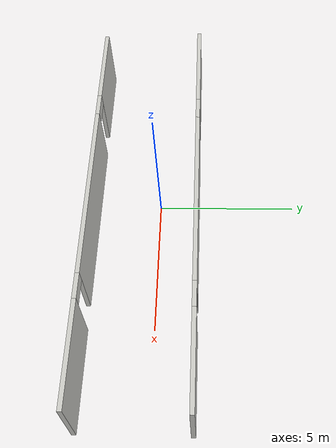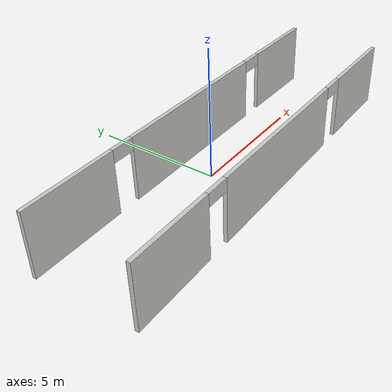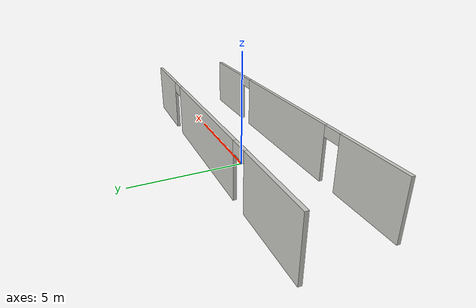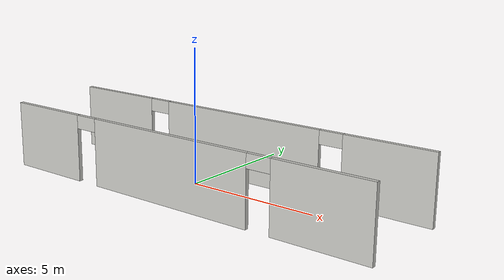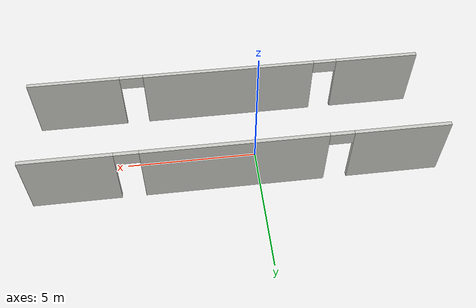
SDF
<sdf version="1.7">
 <world name="__default__">
  <gravity>0 0 -9.8</gravity>
  <magnetic_field>6e-06 2.3e-05 -4.2e-05</magnetic_field>
  <atmosphere type="adiabatic"/>
  <physics type="ode">
   <max_step_size>0.001</max_step_size>
   <real_time_factor>1</real_time_factor>
   <real_time_update_rate>1000</real_time_update_rate>
  </physics>
  <scene><ambient>0.4 0.4 0.4 1</ambient><background>0.7 0.7 0.7 1</background><shadows>1</shadows></scene>
  <spherical_coordinates>
   <surface_model>EARTH_WGS84</surface_model>
   <latitude_deg>0</latitude_deg>
   <longitude_deg>0</longitude_deg>
   <elevation>0</elevation>
   <heading_deg>0</heading_deg>
  </spherical_coordinates>
  <model name="hallway">
   <pose>0.813191 -0.491111 0 0 -0 0</pose>
   <link name="Wall_2">
    <pose>-0 1.87585 0 0 -0 0</pose>
    <visual name="Wall_2_Visual_0">
     <pose>-5.95887 0 1.25 0 -0 0</pose>
     <geometry><box><size>3.58227 0.15 2.5</size></box></geometry>
     <material>
      <script><uri>file://media/materials/scripts/gazebo.material</uri><name>Gazebo/CeilingTiled</name></script>
      <ambient>1 0.764706 0.305882 1</ambient>
     </material>
     <meta><layer>0</layer></meta>
    </visual>
    <collision name="Wall_2_Collision_0">
     <geometry><box><size>3.58227 0.15 2.5</size></box></geometry>
     <pose>-5.95887 0 1.25 0 -0 0</pose>
    </collision>
    <visual name="Wall_2_Visual_1">
     <pose>0.130432 0 1.25 0 -0 0</pose>
     <geometry><box><size>6.79632 0.15 2.5</size></box></geometry>
     <material>
      <script><uri>file://media/materials/scripts/gazebo.material</uri><name>Gazebo/CeilingTiled</name></script>
      <ambient>1 0.764706 0.305882 1</ambient>
     </material>
     <meta><layer>0</layer></meta>
    </visual>
    <collision name="Wall_2_Collision_1">
     <geometry><box><size>6.79632 0.15 2.5</size></box></geometry>
     <pose>0.130432 0 1.25 0 -0 0</pose>
    </collision>
    <visual name="Wall_2_Visual_2">
     <pose>6.0893 0 1.25 0 -0 0</pose>
     <geometry><box><size>3.32141 0.15 2.5</size></box></geometry>
     <material>
      <script><uri>file://media/materials/scripts/gazebo.material</uri><name>Gazebo/CeilingTiled</name></script>
      <ambient>1 0.764706 0.305882 1</ambient>
     </material>
     <meta><layer>0</layer></meta>
    </visual>
    <collision name="Wall_2_Collision_2">
     <geometry><box><size>3.32141 0.15 2.5</size></box></geometry>
     <pose>6.0893 0 1.25 0 -0 0</pose>
    </collision>
    <visual name="Wall_2_Visual_3">
     <pose>-3.71773 0 2.25 0 -0 0</pose>
     <geometry><box><size>0.9 0.15 0.5</size></box></geometry>
     <material>
      <script><uri>file://media/materials/scripts/gazebo.material</uri><name>Gazebo/CeilingTiled</name></script>
      <ambient>1 0.764706 0.305882 1</ambient>
     </material>
     <meta><layer>0</layer></meta>
    </visual>
    <collision name="Wall_2_Collision_3">
     <geometry><box><size>0.9 0.15 0.5</size></box></geometry>
     <pose>-3.71773 0 2.25 0 -0 0</pose>
    </collision>
    <visual name="Wall_2_Visual_4">
     <pose>3.97859 0 2.25 0 -0 0</pose>
     <geometry><box><size>0.9 0.15 0.5</size></box></geometry>
     <material>
      <script><uri>file://media/materials/scripts/gazebo.material</uri><name>Gazebo/CeilingTiled</name></script>
      <ambient>1 0.764706 0.305882 1</ambient>
     </material>
     <meta><layer>0</layer></meta>
    </visual>
    <collision name="Wall_2_Collision_4">
     <geometry><box><size>0.9 0.15 0.5</size></box></geometry>
     <pose>3.97859 0 2.25 0 -0 0</pose>
    </collision>
   </link>
   <link name="Wall_7">
    <pose>0.060866 -1.87585 0 0 -0 0</pose>
    <visual name="Wall_7_Visual_0">
     <pose>-5.99773 0 1.25 0 -0 0</pose>
     <geometry><box><size>3.25454 0.15 2.5</size></box></geometry>
     <material>
      <script><uri>file://media/materials/scripts/gazebo.material</uri><name>Gazebo/CeilingTiled</name></script>
      <ambient>1 0.764706 0.305882 1</ambient>
     </material>
     <meta><layer>0</layer></meta>
    </visual>
    <collision name="Wall_7_Collision_0">
     <geometry><box><size>3.25454 0.15 2.5</size></box></geometry>
     <pose>-5.99773 0 1.25 0 -0 0</pose>
    </collision>
    <visual name="Wall_7_Visual_1">
     <pose>-0.125502 0 1.25 0 -0 0</pose>
     <geometry><box><size>6.68992 0.15 2.5</size></box></geometry>
     <material>
      <script><uri>file://media/materials/scripts/gazebo.material</uri><name>Gazebo/CeilingTiled</name></script>
      <ambient>1 0.764706 0.305882 1</ambient>
     </material>
     <meta><layer>0</layer></meta>
    </visual>
    <collision name="Wall_7_Collision_1">
     <geometry><box><size>6.68992 0.15 2.5</size></box></geometry>
     <pose>-0.125502 0 1.25 0 -0 0</pose>
    </collision>
    <visual name="Wall_7_Visual_2">
     <pose>5.87223 0 1.25 0 -0 0</pose>
     <geometry><box><size>3.50554 0.15 2.5</size></box></geometry>
     <material>
      <script><uri>file://media/materials/scripts/gazebo.material</uri><name>Gazebo/CeilingTiled</name></script>
      <ambient>1 0.764706 0.305882 1</ambient>
     </material>
     <meta><layer>0</layer></meta>
    </visual>
    <collision name="Wall_7_Collision_2">
     <geometry><box><size>3.50554 0.15 2.5</size></box></geometry>
     <pose>5.87223 0 1.25 0 -0 0</pose>
    </collision>
    <visual name="Wall_7_Visual_3">
     <pose>-3.92046 0 2.25 0 -0 0</pose>
     <geometry><box><size>0.9 0.15 0.5</size></box></geometry>
     <material>
      <script><uri>file://media/materials/scripts/gazebo.material</uri><name>Gazebo/CeilingTiled</name></script>
      <ambient>1 0.764706 0.305882 1</ambient>
     </material>
     <meta><layer>0</layer></meta>
    </visual>
    <collision name="Wall_7_Collision_3">
     <geometry><box><size>0.9 0.15 0.5</size></box></geometry>
     <pose>-3.92046 0 2.25 0 -0 0</pose>
    </collision>
    <visual name="Wall_7_Visual_4">
     <pose>3.66946 0 2.25 0 -0 0</pose>
     <geometry><box><size>0.9 0.15 0.5</size></box></geometry>
     <material>
      <script><uri>file://media/materials/scripts/gazebo.material</uri><name>Gazebo/CeilingTiled</name></script>
      <ambient>1 0.764706 0.305882 1</ambient>
     </material>
     <meta><layer>0</layer></meta>
    </visual>
    <collision name="Wall_7_Collision_4">
     <geometry><box><size>0.9 0.15 0.5</size></box></geometry>
     <pose>3.66946 0 2.25 0 -0 0</pose>
    </collision>
   </link>
   <static>1</static>
  </model>
 </world>
</sdf>
